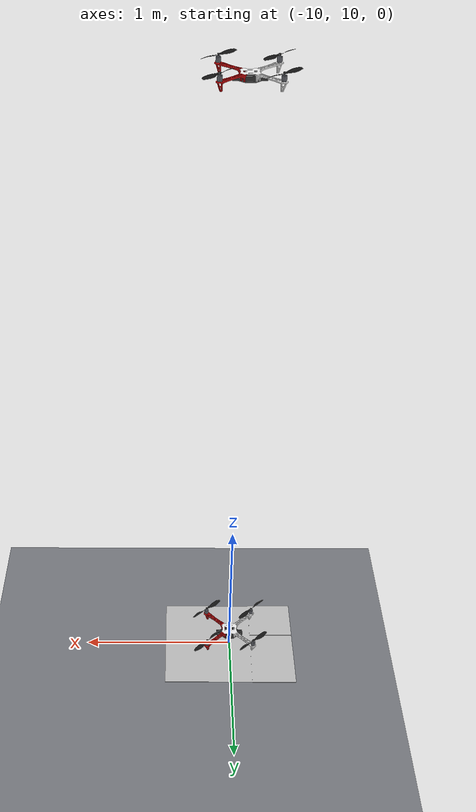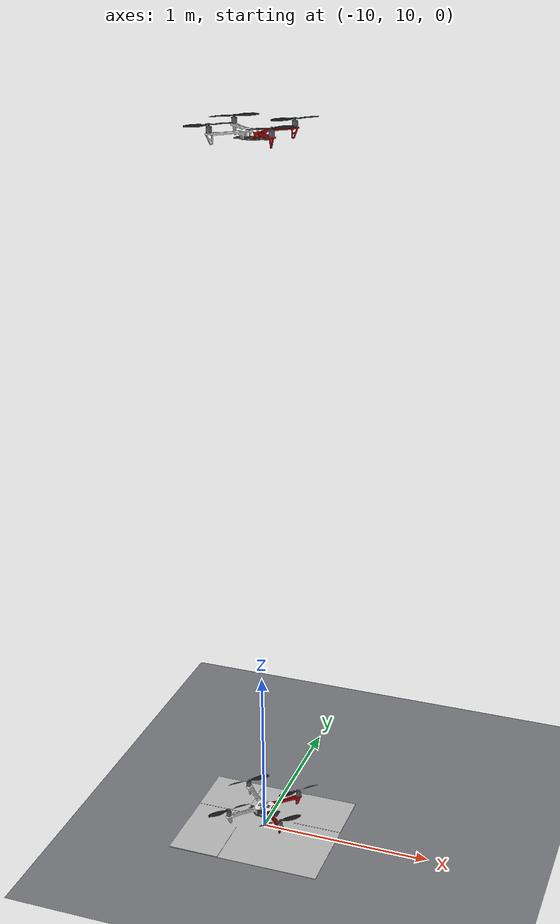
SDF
<?xml version="1.0" ?>
<sdf version="1.9">
  <world name="ibvs">

    <!-- Every node is paced by this clock (sim_rate.hpp). Slow the sim HERE via
         real_time_factor, not by lowering the camera's update_rate. -->
    <physics name="default_physics" type="ignored">
      <max_step_size>0.001</max_step_size>
      <real_time_factor>1.0</real_time_factor>
      <real_time_update_rate>1000</real_time_update_rate>
    </physics>
    <gravity>0 0 -9.81</gravity>

    <!-- The barometer's pressure-vs-altitude model. Without it EKF2's height estimate walks
         away under plant:=px4; inert for the other plants. -->
    <atmosphere type="adiabatic"/>

    <magnetic_field>0 2.3769e-05 -4.2e-05</magnetic_field>
    <spherical_coordinates>
      <surface_model>EARTH_WGS84</surface_model>
      <world_frame_orientation>ENU</world_frame_orientation>
      <latitude_deg>47.397971057728974</latitude_deg>
      <longitude_deg>8.546163739800146</longitude_deg>
      <elevation>0</elevation>
    </spherical_coordinates>

    <!-- Sensors renders the camera; UserCommands is what makes set_pose_vector work.
         Both are mandatory for this simulation. -->
    <plugin filename="gz-sim-physics-system"           name="gz::sim::systems::Physics"/>
    <plugin filename="gz-sim-user-commands-system"     name="gz::sim::systems::UserCommands"/>
    <plugin filename="gz-sim-scene-broadcaster-system" name="gz::sim::systems::SceneBroadcaster"/>
    <plugin filename="gz-sim-sensors-system"           name="gz::sim::systems::Sensors">
      <render_engine>ogre2</render_engine>
    </plugin>

    <!-- ONLY:px4 BEGIN -->
    <plugin filename="gz-sim-imu-system"           name="gz::sim::systems::Imu"/>
    <plugin filename="gz-sim-air-pressure-system"  name="gz::sim::systems::AirPressure"/>
    <plugin filename="gz-sim-magnetometer-system"  name="gz::sim::systems::Magnetometer"/>
    <plugin filename="gz-sim-navsat-system"        name="gz::sim::systems::NavSat"/>
    <plugin filename="gz-sim-contact-system"       name="gz::sim::systems::Contact"/>
    <plugin filename="gz-sim-apply-link-wrench-system" name="gz::sim::systems::ApplyLinkWrench"/>
    <!-- ONLY END -->

    <!-- ONLY:gazebo BEGIN -->
    <plugin filename="BodyWrenchSystem" name="quad_gz_sim::BodyWrench">
      <model_name>F450</model_name>
      <link_name>base_link</link_name>
      <topic_prefix>/F450</topic_prefix>
      <initial_thrust>19.62</initial_thrust>
      <state_publish_rate>100</state_publish_rate>
      <!-- Guard against a diverged controller reaching DART, not actuator saturation. -->
      <max_force>500</max_force>
      <max_torque>100</max_torque>
    </plugin>
    <!-- ONLY END -->

    <!-- ONLY:px4 BEGIN -->
    <plugin filename="BodyWrenchSystem" name="quad_gz_sim::BodyWrench">
      <model_name>F450</model_name>
      <link_name>base_link</link_name>
      <topic_prefix>/F450</topic_prefix>
      <initial_thrust>0</initial_thrust>
      <state_publish_rate>100</state_publish_rate>
      <max_force>500</max_force>
      <max_torque>100</max_torque>
    </plugin>
    <!-- ONLY END -->

    <!-- ONLY:px4 BEGIN -->
    <!-- Always on: m*0.1*(v_wind - v_link) plus this noise on every enable_wind link, even at zero
         wind. Kept out of gazebo, whose only disturbance is /disturbances. After BodyWrench. -->
    <wind>
      <linear_velocity>0 0 0</linear_velocity>
    </wind>
    <plugin filename="gz-sim-wind-effects-system" name="gz::sim::systems::WindEffects">
      <force_approximation_scaling_factor>0.1</force_approximation_scaling_factor>
      <horizontal>
        <magnitude>
          <time_for_rise>4</time_for_rise>
          <noise type="gaussian"><mean>0</mean><stddev>0.03</stddev></noise>
        </magnitude>
        <direction>
          <time_for_rise>2</time_for_rise>
          <noise type="gaussian"><mean>0</mean><stddev>0.03</stddev></noise>
        </direction>
      </horizontal>
      <vertical>
        <noise type="gaussian"><mean>0</mean><stddev>0.01</stddev></noise>
      </vertical>
    </plugin>
    <!-- ONLY END -->

    <!-- Echo instance, LAST on purpose: the wrench component is zeroed every step, so the
         total is only observable by a system running after everyone who writes it. -->
    <!-- ONLY:gazebo BEGIN -->
    <plugin filename="BodyWrenchSystem" name="quad_gz_sim::BodyWrench">
      <mode>echo</mode>
      <model_name>F450</model_name>
      <link_name>base_link</link_name>
      <topic_prefix>/F450</topic_prefix>
      <state_publish_rate>100</state_publish_rate>
      <!-- MUST match the plant instance: the echo subtracts commanded thrust. -->
      <initial_thrust>19.62</initial_thrust>
    </plugin>
    <!-- ONLY END -->

    <!-- ONLY:px4 BEGIN -->
    <!-- Subtracts nothing, so it reports the whole base_link wrench. PX4's thrust goes to the
         rotor links and never lands here, so this stays the observer's ground truth. -->
    <plugin filename="BodyWrenchSystem" name="quad_gz_sim::BodyWrench">
      <mode>echo</mode>
      <model_name>F450</model_name>
      <link_name>base_link</link_name>
      <topic_prefix>/F450</topic_prefix>
      <state_publish_rate>100</state_publish_rate>
      <initial_thrust>0</initial_thrust>
    </plugin>
    <!-- ONLY END -->

    <!-- The ground plane is deliberately untextured: anything busy under the markers risks
         the ArUco adaptive threshold. The grid is GUI-only and never reaches the sensor. -->
    <scene>
      <grid>true</grid>
      <ambient>0.8 0.8 0.8 1.0</ambient>
      <sky/>
      <shadows>false</shadows>
    </scene>

    <!-- 2 cm down so z=0 does not z-fight the 1 mm ArUco plate. The collision makes ground
         contact real; the plugin's NaN guard stops a divergence becoming a DART assert. -->
    <model name="ground_plane">
      <static>true</static>
      <pose>0 0 -0.02 0 0 0</pose>
      <link name="link">
        <collision name="collision">
          <geometry><plane><normal>0 0 1</normal><size>400 400</size></plane></geometry>
        </collision>
        <visual name="visual">
          <geometry><plane><normal>0 0 1</normal><size>400 400</size></plane></geometry>
          <material>
            <ambient>0.35 0.36 0.38 1</ambient>
            <diffuse>0.45 0.46 0.48 1</diffuse>
          </material>
          <cast_shadows>0</cast_shadows>
        </visual>
      </link>
    </model>

    <light type="directional" name="sun">
      <cast_shadows>false</cast_shadows>
      <pose>0 0 40 0 0 0</pose>
      <diffuse>0.8 0.8 0.8 1</diffuse>
      <specular>0.2 0.2 0.2 1</specular>
      <direction>-0.5 0.1 -0.9</direction>
    </light>

    <!-- 13-point light grid from the classic world; keeps the markers legible across the
         whole trajectory footprint, which starts at (-10,-10) in ROS coordinates. -->
    <light name="point_light_0" type="point">
      <pose>22 20 12 0 0 0</pose>
      <diffuse>0.5 0.5 0.5 1</diffuse>
      <attenuation><range>20</range><constant>0.2</constant><linear>0</linear><quadratic>0.0</quadratic></attenuation>
    </light>
    <light name="point_light_1" type="point">
      <pose>20 0 12 0 0 0</pose>
      <diffuse>0.5 0.5 0.5 1</diffuse>
      <attenuation><range>20</range><constant>0.2</constant><linear>0</linear><quadratic>0.0</quadratic></attenuation>
    </light>
    <light name="point_light_2" type="point">
      <pose>20 -20 12 0 0 0</pose>
      <diffuse>0.5 0.5 0.5 1</diffuse>
      <attenuation><range>20</range><constant>0.2</constant><linear>0</linear><quadratic>0.0</quadratic></attenuation>
    </light>
    <light name="point_light_3" type="point">
      <pose>0 20 12 0 0 0</pose>
      <diffuse>0.5 0.5 0.5 1</diffuse>
      <attenuation><range>20</range><constant>0.2</constant><linear>0</linear><quadratic>0.0</quadratic></attenuation>
    </light>
    <light name="point_light_4" type="point">
      <pose>0 0 12 0 0 0</pose>
      <diffuse>0.5 0.5 0.5 1</diffuse>
      <attenuation><range>20</range><constant>0.2</constant><linear>0</linear><quadratic>0.0</quadratic></attenuation>
    </light>
    <light name="point_light_5" type="point">
      <pose>0 -20 12 0 0 0</pose>
      <diffuse>0.5 0.5 0.5 1</diffuse>
      <attenuation><range>20</range><constant>0.2</constant><linear>0</linear><quadratic>0.0</quadratic></attenuation>
    </light>
    <light name="point_light_6" type="point">
      <pose>-20 20 12 0 0 0</pose>
      <diffuse>0.5 0.5 0.5 1</diffuse>
      <attenuation><range>20</range><constant>0.2</constant><linear>0</linear><quadratic>0.0</quadratic></attenuation>
    </light>
    <light name="point_light_7" type="point">
      <pose>-20 0 12 0 0 0</pose>
      <diffuse>0.5 0.5 0.5 1</diffuse>
      <attenuation><range>20</range><constant>0.2</constant><linear>0</linear><quadratic>0.0</quadratic></attenuation>
    </light>
    <light name="point_light_8" type="point">
      <pose>-20 -20 12 0 0 0</pose>
      <diffuse>0.5 0.5 0.5 1</diffuse>
      <attenuation><range>20</range><constant>0.2</constant><linear>0</linear><quadratic>0.0</quadratic></attenuation>
    </light>
    <light name="point_light_9" type="point">
      <pose>10 10 12 0 0 0</pose>
      <diffuse>0.5 0.5 0.5 1</diffuse>
      <attenuation><range>20</range><constant>0.2</constant><linear>0</linear><quadratic>0.0</quadratic></attenuation>
    </light>
    <light name="point_light_10" type="point">
      <pose>10 -10 12 0 0 0</pose>
      <diffuse>0.5 0.5 0.5 1</diffuse>
      <attenuation><range>20</range><constant>0.2</constant><linear>0</linear><quadratic>0.0</quadratic></attenuation>
    </light>
    <light name="point_light_11" type="point">
      <pose>-10 10 12 0 0 0</pose>
      <diffuse>0.5 0.5 0.5 1</diffuse>
      <attenuation><range>20</range><constant>0.2</constant><linear>0</linear><quadratic>0.0</quadratic></attenuation>
    </light>
    <light name="point_light_12" type="point">
      <pose>-10 -10 12 0 0 0</pose>
      <diffuse>0.5 0.5 0.5 1</diffuse>
      <attenuation><range>20</range><constant>0.2</constant><linear>0</linear><quadratic>0.0</quadratic></attenuation>
    </light>

    <!-- Initial poses match what gz_pose_broadcaster commands on its first cycle
         (ROS y and z are negated), so there is no first-frame flash at the origin. -->
    <include>
      <uri>model://aruco_target</uri>
      <name>aruco_Target</name>
      <pose>-10 10 0 0 0 0</pose>
    </include>

    <!-- ONLY:analytic,gazebo BEGIN -->
    <include>
      <uri>model://F450</uri>
      <name>F450</name>
      <pose>-10 10 4 0 0 0</pose>
    </include>
    <!-- ONLY END -->

    <!-- ONLY:px4 BEGIN -->
    <include>
      <uri>model://F450_px4</uri>
      <name>F450</name>
      <pose>-10 10 0.1 0 0 0</pose>
    </include>
    <!-- ONLY END -->

    <gui fullscreen="0">

      <plugin filename="MinimalScene" name="3D View">
        <gz-gui>
          <title>3D View</title>
          <property type="bool" key="showTitleBar">false</property>
          <property type="string" key="state">docked</property>
        </gz-gui>
        <engine>ogre2</engine>
        <scene>scene</scene>
        <ambient_light>0.8 0.8 0.8</ambient_light>
        <background_color>0.55 0.65 0.78</background_color>
        <!-- Oblique, not top-down, so the horizon stays in shot and motion is readable. -->
        <camera_pose>-22 10 6 0 0.40 0</camera_pose>
      </plugin>

      <plugin filename="EntityContextMenuPlugin" name="Entity context menu">
        <gz-gui>
          <property key="state" type="string">floating</property>
          <property key="width" type="double">5</property>
          <property key="height" type="double">5</property>
          <property key="showTitleBar" type="bool">false</property>
        </gz-gui>
      </plugin>
      <plugin filename="GzSceneManager" name="Scene Manager">
        <gz-gui>
          <property key="resizable" type="bool">false</property>
          <property key="width" type="double">5</property>
          <property key="height" type="double">5</property>
          <property key="state" type="string">floating</property>
          <property key="showTitleBar" type="bool">false</property>
        </gz-gui>
      </plugin>
      <plugin filename="InteractiveViewControl" name="Interactive view control">
        <gz-gui>
          <property key="resizable" type="bool">false</property>
          <property key="width" type="double">5</property>
          <property key="height" type="double">5</property>
          <property key="state" type="string">floating</property>
          <property key="showTitleBar" type="bool">false</property>
        </gz-gui>
      </plugin>
      <plugin filename="CameraTracking" name="Camera Tracking">
        <gz-gui>
          <property key="resizable" type="bool">false</property>
          <property key="width" type="double">5</property>
          <property key="height" type="double">5</property>
          <property key="state" type="string">floating</property>
          <property key="showTitleBar" type="bool">false</property>
        </gz-gui>
      </plugin>
      <plugin filename="MarkerManager" name="Marker manager">
        <gz-gui>
          <property key="resizable" type="bool">false</property>
          <property key="width" type="double">5</property>
          <property key="height" type="double">5</property>
          <property key="state" type="string">floating</property>
          <property key="showTitleBar" type="bool">false</property>
        </gz-gui>
      </plugin>
      <plugin filename="SelectEntities" name="Select Entities">
        <gz-gui>
          <property key="resizable" type="bool">false</property>
          <property key="width" type="double">5</property>
          <property key="height" type="double">5</property>
          <property key="state" type="string">floating</property>
          <property key="showTitleBar" type="bool">false</property>
        </gz-gui>
      </plugin>
      <plugin filename="VisualizationCapabilities" name="Visualization Capabilities">
        <gz-gui>
          <property key="resizable" type="bool">false</property>
          <property key="width" type="double">5</property>
          <property key="height" type="double">5</property>
          <property key="state" type="string">floating</property>
          <property key="showTitleBar" type="bool">false</property>
        </gz-gui>
      </plugin>

      <!-- start_paused false: the GUI's default of true pauses the server on connect. -->
      <plugin filename="WorldControl" name="World control">
        <gz-gui>
          <title>World control</title>
          <property type="bool" key="showTitleBar">false</property>
          <property type="bool" key="resizable">false</property>
          <property type="double" key="height">72</property>
          <property type="double" key="z">1</property>
          <property type="string" key="state">floating</property>
          <anchors target="3D View">
            <line own="left" target="left"/>
            <line own="bottom" target="bottom"/>
          </anchors>
        </gz-gui>
        <play_pause>true</play_pause>
        <step>true</step>
        <start_paused>false</start_paused>
        <use_event>true</use_event>
      </plugin>

      <plugin filename="WorldStats" name="World stats">
        <gz-gui>
          <title>World stats</title>
          <property type="bool" key="showTitleBar">false</property>
          <property type="bool" key="resizable">false</property>
          <property type="double" key="height">110</property>
          <property type="double" key="width">290</property>
          <property type="double" key="z">1</property>
          <property type="string" key="state">floating</property>
          <anchors target="3D View">
            <line own="right" target="right"/>
            <line own="bottom" target="bottom"/>
          </anchors>
        </gz-gui>
        <sim_time>true</sim_time>
        <real_time>true</real_time>
        <real_time_factor>true</real_time_factor>
        <iterations>true</iterations>
      </plugin>

      <!-- Raw gz-transport image, upstream of ros_gz_bridge. -->
      <plugin filename="ImageDisplay" name="Onboard camera">
        <gz-gui>
          <title>Onboard camera</title>
          <property type="string" key="state">docked</property>
          <property type="double" key="width">420</property>
          <property type="double" key="height">320</property>
        </gz-gui>
        <topic>/quad/camera/image_raw</topic>
        <topic_picker>false</topic_picker>
      </plugin>

    </gui>

  </world>
</sdf>

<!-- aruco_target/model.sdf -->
<sdf version='1.9'>
  <model name='aruco_Target'>
    <link name='link_aruco'>
      <pose>0 0 0 0 0 0</pose>
      <inertial>
        <pose>0 0 0 0 0 -1.57079633</pose>
        <mass>0.2</mass>
        <inertia>
          <ixx>0.0411</ixx>
          <ixy>0</ixy>
          <ixz>0</ixz>
          <iyy>0.0478</iyy>
          <iyz>0</iyz>
          <izz>0.0599</izz>
        </inertia>
      </inertial>
      <self_collide>0</self_collide>

      <collision name='Collision'>
        <pose>0 0 0 0 0 -1.57079633</pose>
        <geometry>
          <box>
            <size>0.90 0.75 0.001</size>
          </box>
        </geometry>
      </collision>

      <visual name='visual'>
        <pose>0 0 0 0 0 -1.57079633</pose>
        <geometry>
          <mesh>
            <uri>model://aruco_target/meshes/Target2.dae</uri>
            <scale>1 1 1</scale>
          </mesh>
        </geometry>
        <cast_shadows>0</cast_shadows>
        <transparency>0</transparency>
      </visual>
    </link>
    <static>0</static>
    <allow_auto_disable>0</allow_auto_disable>
  </model>
</sdf>

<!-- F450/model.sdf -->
<sdf version='1.9'>
  <model name='F450'>

    <!-- ================= airframe: plates + arms + motors ====================== -->
    <link name='base_link'>
      <self_collide>0</self_collide>

      <inertial>
        <pose>0 0 -0.0063582 0 0 0</pose>
        <mass>1.852144</mass>
        <inertia>
          <ixx>0.0359836</ixx>
          <ixy>0</ixy>
          <ixz>0</ixz>
          <iyy>0.0426836</iyy>
          <iyz>0</iyz>
          <izz>0.0516929</izz>
        </inertia>
      </inertial>

      <!-- Coarse stand-in; only matters once the quad reaches the ground. -->
      <collision name='base_collision'>
        <geometry>
          <cylinder><radius>0.25</radius><length>0.06</length></cylinder>
        </geometry>
      </collision>

      <!-- Consumed by gz-sim-wind-effects-system; ignored when that plugin is not loaded. -->
      <enable_wind>true</enable_wind>

      <visual name='base_plate'>
        <geometry>
          <mesh>
            <uri>model://F450/meshes/base_plate.stl</uri>
            <scale>0.001 0.001 0.001</scale>
          </mesh>
        </geometry>
        <material>
          <ambient>0.05 0.05 0.05 1</ambient>
          <diffuse>0.12 0.12 0.12 1</diffuse>
          <specular>0.1 0.1 0.1 1</specular>
        </material>
      </visual>

      <visual name='top_plate'>
        <geometry>
          <mesh>
            <uri>model://F450/meshes/top_plate.stl</uri>
            <scale>0.001 0.001 0.001</scale>
          </mesh>
        </geometry>
        <material>
          <ambient>0.6 0.6 0.6 1</ambient>
          <diffuse>0.9 0.9 0.9 1</diffuse>
          <specular>0.2 0.2 0.2 1</specular>
        </material>
      </visual>

      <!-- Front arms red, rear white (stock livery): the only heading cue in the 3D view.
           Mesh is the front right arm; +90 deg of yaw walks it round the other three. -->
      <visual name='arm_front_right'>
        <pose>0 0 0 0 0 0</pose>
        <geometry>
          <mesh>
            <uri>model://F450/meshes/arm.stl</uri>
            <scale>0.001 0.001 0.001</scale>
          </mesh>
        </geometry>
        <material>
          <ambient>0.35 0.02 0.02 1</ambient>
          <diffuse>0.75 0.04 0.04 1</diffuse>
          <specular>0.2 0.1 0.1 1</specular>
        </material>
      </visual>

      <visual name='arm_front_left'>
        <pose>0 0 0 0 0 1.5707963</pose>
        <geometry>
          <mesh>
            <uri>model://F450/meshes/arm.stl</uri>
            <scale>0.001 0.001 0.001</scale>
          </mesh>
        </geometry>
        <material>
          <ambient>0.35 0.02 0.02 1</ambient>
          <diffuse>0.75 0.04 0.04 1</diffuse>
          <specular>0.2 0.1 0.1 1</specular>
        </material>
      </visual>

      <visual name='arm_rear_left'>
        <pose>0 0 0 0 0 3.1415927</pose>
        <geometry>
          <mesh>
            <uri>model://F450/meshes/arm.stl</uri>
            <scale>0.001 0.001 0.001</scale>
          </mesh>
        </geometry>
        <material>
          <ambient>0.55 0.55 0.55 1</ambient>
          <diffuse>0.88 0.88 0.88 1</diffuse>
          <specular>0.2 0.2 0.2 1</specular>
        </material>
      </visual>

      <visual name='arm_rear_right'>
        <pose>0 0 0 0 0 -1.5707963</pose>
        <geometry>
          <mesh>
            <uri>model://F450/meshes/arm.stl</uri>
            <scale>0.001 0.001 0.001</scale>
          </mesh>
        </geometry>
        <material>
          <ambient>0.55 0.55 0.55 1</ambient>
          <diffuse>0.88 0.88 0.88 1</diffuse>
          <specular>0.2 0.2 0.2 1</specular>
        </material>
      </visual>

      <!-- Motor mesh is authored at the front left boom. -->
      <visual name='motor_front_left'>
        <pose>0 0 0 0 0 0</pose>
        <geometry>
          <mesh>
            <uri>model://F450/meshes/motor.stl</uri>
            <scale>0.001 0.001 0.001</scale>
          </mesh>
        </geometry>
        <material>
          <ambient>0.2 0.2 0.22 1</ambient>
          <diffuse>0.42 0.43 0.46 1</diffuse>
          <specular>0.5 0.5 0.5 1</specular>
        </material>
      </visual>

      <visual name='motor_rear_left'>
        <pose>0 0 0 0 0 1.5707963</pose>
        <geometry>
          <mesh>
            <uri>model://F450/meshes/motor.stl</uri>
            <scale>0.001 0.001 0.001</scale>
          </mesh>
        </geometry>
        <material>
          <ambient>0.2 0.2 0.22 1</ambient>
          <diffuse>0.42 0.43 0.46 1</diffuse>
          <specular>0.5 0.5 0.5 1</specular>
        </material>
      </visual>

      <visual name='motor_rear_right'>
        <pose>0 0 0 0 0 3.1415927</pose>
        <geometry>
          <mesh>
            <uri>model://F450/meshes/motor.stl</uri>
            <scale>0.001 0.001 0.001</scale>
          </mesh>
        </geometry>
        <material>
          <ambient>0.2 0.2 0.22 1</ambient>
          <diffuse>0.42 0.43 0.46 1</diffuse>
          <specular>0.5 0.5 0.5 1</specular>
        </material>
      </visual>

      <visual name='motor_front_right'>
        <pose>0 0 0 0 0 -1.5707963</pose>
        <geometry>
          <mesh>
            <uri>model://F450/meshes/motor.stl</uri>
            <scale>0.001 0.001 0.001</scale>
          </mesh>
        </geometry>
        <material>
          <ambient>0.2 0.2 0.22 1</ambient>
          <diffuse>0.42 0.43 0.46 1</diffuse>
          <specular>0.5 0.5 0.5 1</specular>
        </material>
      </visual>

      <!-- Camera at the model origin, looking along body -z. The plant treats quad
           position as camera position, so this must stay at 0 0 0. Nothing occludes it. -->
      <sensor name='camera1' type='camera'>
        <pose>0 0 0 0 1.570796 0</pose>
        <topic>quad/camera/image_raw</topic>
        <camera name="head">
          <horizontal_fov>1.085595</horizontal_fov>
          <image>
            <!-- Twice the ROS 1 resolution; required to decode the markers from the
                 paper's -4 m start. pixel_size in image_features.cpp is halved to match. -->
            <width>820</width>
            <height>616</height>
            <format>R8G8B8</format>
          </image>
          <clip>
            <near>0.02</near>
            <far>300</far>
          </clip>
        </camera>
        <always_on>1</always_on>
        <!-- Sim-time rate, matching image_features' own 50 Hz loop. Do not lower it; to
             slow the simulation change real_time_factor in worlds/ibvs.sdf instead. -->
        <update_rate>50</update_rate>
        <visualize>1</visualize>
      </sensor>
    </link>

    <!-- ================= rotors ================================================ -->
    <!-- One link per propeller. Visual offset is minus the hub position (the STL is in
         assembly coordinates); yaw is the k*90 deg off the front left blade. -->

    <link name='rotor_front_left'>
      <pose>0.158911 0.158901 0.079647 0 0 0</pose>
      <inertial>
        <mass>0.036964</mass>
        <inertia>
          <ixx>0.0000925</ixx><ixy>0</ixy><ixz>0</ixz>
          <iyy>0.0000925</iyy><iyz>0</iyz>
          <izz>0.000185</izz>
        </inertia>
      </inertial>
      <visual name='visual'>
        <pose>-0.158911 -0.158901 -0.079647 0 0 0</pose>
        <geometry>
          <mesh>
            <uri>model://F450/meshes/propeller_cw.stl</uri>
            <scale>0.001 0.001 0.001</scale>
          </mesh>
        </geometry>
        <material>
          <ambient>0.02 0.02 0.02 1</ambient>
          <diffuse>0.08 0.08 0.08 1</diffuse>
          <specular>0.3 0.3 0.3 1</specular>
        </material>
      </visual>
    </link>

    <link name='rotor_rear_left'>
      <pose>-0.158901 0.158911 0.079647 0 0 0</pose>
      <inertial>
        <mass>0.036964</mass>
        <inertia>
          <ixx>0.0000925</ixx><ixy>0</ixy><ixz>0</ixz>
          <iyy>0.0000925</iyy><iyz>0</iyz>
          <izz>0.000185</izz>
        </inertia>
      </inertial>
      <visual name='visual'>
        <pose>0.158901 -0.158911 -0.079647 0 0 1.5707963</pose>
        <geometry>
          <mesh>
            <uri>model://F450/meshes/propeller_ccw.stl</uri>
            <scale>0.001 0.001 0.001</scale>
          </mesh>
        </geometry>
        <material>
          <ambient>0.02 0.02 0.02 1</ambient>
          <diffuse>0.08 0.08 0.08 1</diffuse>
          <specular>0.3 0.3 0.3 1</specular>
        </material>
      </visual>
    </link>

    <link name='rotor_rear_right'>
      <pose>-0.158911 -0.158901 0.079647 0 0 0</pose>
      <inertial>
        <mass>0.036964</mass>
        <inertia>
          <ixx>0.0000925</ixx><ixy>0</ixy><ixz>0</ixz>
          <iyy>0.0000925</iyy><iyz>0</iyz>
          <izz>0.000185</izz>
        </inertia>
      </inertial>
      <visual name='visual'>
        <pose>0.158911 0.158901 -0.079647 0 0 3.1415927</pose>
        <geometry>
          <mesh>
            <uri>model://F450/meshes/propeller_cw.stl</uri>
            <scale>0.001 0.001 0.001</scale>
          </mesh>
        </geometry>
        <material>
          <ambient>0.02 0.02 0.02 1</ambient>
          <diffuse>0.08 0.08 0.08 1</diffuse>
          <specular>0.3 0.3 0.3 1</specular>
        </material>
      </visual>
    </link>

    <link name='rotor_front_right'>
      <pose>0.158901 -0.158911 0.079647 0 0 0</pose>
      <inertial>
        <mass>0.036964</mass>
        <inertia>
          <ixx>0.0000925</ixx><ixy>0</ixy><ixz>0</ixz>
          <iyy>0.0000925</iyy><iyz>0</iyz>
          <izz>0.000185</izz>
        </inertia>
      </inertial>
      <visual name='visual'>
        <pose>-0.158901 0.158911 -0.079647 0 0 -1.5707963</pose>
        <geometry>
          <mesh>
            <uri>model://F450/meshes/propeller_ccw.stl</uri>
            <scale>0.001 0.001 0.001</scale>
          </mesh>
        </geometry>
        <material>
          <ambient>0.02 0.02 0.02 1</ambient>
          <diffuse>0.08 0.08 0.08 1</diffuse>
          <specular>0.3 0.3 0.3 1</specular>
        </material>
      </visual>
    </link>

    <!-- The URDF's "continuous" joints; SDF has no such type, so revolute with limits
         wide enough never to be reached. Axis +z up, positive command = CCW from above. -->
    <joint name='rotor_front_left_joint' type='revolute'>
      <parent>base_link</parent>
      <child>rotor_front_left</child>
      <axis>
        <xyz>0 0 1</xyz>
        <limit><lower>-1e16</lower><upper>1e16</upper></limit>
        <dynamics><damping>0</damping><friction>0</friction></dynamics>
      </axis>
    </joint>

    <joint name='rotor_rear_left_joint' type='revolute'>
      <parent>base_link</parent>
      <child>rotor_rear_left</child>
      <axis>
        <xyz>0 0 1</xyz>
        <limit><lower>-1e16</lower><upper>1e16</upper></limit>
        <dynamics><damping>0</damping><friction>0</friction></dynamics>
      </axis>
    </joint>

    <joint name='rotor_rear_right_joint' type='revolute'>
      <parent>base_link</parent>
      <child>rotor_rear_right</child>
      <axis>
        <xyz>0 0 1</xyz>
        <limit><lower>-1e16</lower><upper>1e16</upper></limit>
        <dynamics><damping>0</damping><friction>0</friction></dynamics>
      </axis>
    </joint>

    <joint name='rotor_front_right_joint' type='revolute'>
      <parent>base_link</parent>
      <child>rotor_front_right</child>
      <axis>
        <xyz>0 0 1</xyz>
        <limit><lower>-1e16</lower><upper>1e16</upper></limit>
        <dynamics><damping>0</damping><friction>0</friction></dynamics>
      </axis>
    </joint>

    <plugin filename="gz-sim-joint-controller-system" name="gz::sim::systems::JointController">
      <joint_name>rotor_front_left_joint</joint_name>
      <initial_velocity>-60.0</initial_velocity>
      <topic>/model/F450/joint/rotor_front_left_joint/cmd_vel</topic>
    </plugin>
    <plugin filename="gz-sim-joint-controller-system" name="gz::sim::systems::JointController">
      <joint_name>rotor_rear_right_joint</joint_name>
      <initial_velocity>-60.0</initial_velocity>
      <topic>/model/F450/joint/rotor_rear_right_joint/cmd_vel</topic>
    </plugin>
    <plugin filename="gz-sim-joint-controller-system" name="gz::sim::systems::JointController">
      <joint_name>rotor_front_right_joint</joint_name>
      <initial_velocity>60.0</initial_velocity>
      <topic>/model/F450/joint/rotor_front_right_joint/cmd_vel</topic>
    </plugin>
    <plugin filename="gz-sim-joint-controller-system" name="gz::sim::systems::JointController">
      <joint_name>rotor_rear_left_joint</joint_name>
      <initial_velocity>60.0</initial_velocity>
      <topic>/model/F450/joint/rotor_rear_left_joint/cmd_vel</topic>
    </plugin>

    <static>0</static>
    <allow_auto_disable>0</allow_auto_disable>
  </model>
</sdf>

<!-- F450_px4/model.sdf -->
<sdf version='1.9'>
  <model name='F450_px4'>

    <include merge='true'>
      <uri>model://F450_base</uri>
    </include>

    <plugin filename="gz-sim-multicopter-motor-model-system"
      name="gz::sim::systems::MulticopterMotorModel">
      <jointName>rotor_front_right_joint</jointName>
      <linkName>rotor_front_right</linkName>
      <turningDirection>ccw</turningDirection>
      <timeConstantUp>0.0125</timeConstantUp>
      <timeConstantDown>0.025</timeConstantDown>
      <maxRotVelocity>1200.0</maxRotVelocity>
      <motorConstant>8.566e-06</motorConstant>
      <momentConstant>0.016</momentConstant>
      <commandSubTopic>command/motor_speed</commandSubTopic>
      <motorNumber>0</motorNumber>
      <rotorDragCoefficient>8.06428e-05</rotorDragCoefficient>
      <rollingMomentCoefficient>1e-06</rollingMomentCoefficient>
      <rotorVelocitySlowdownSim>10</rotorVelocitySlowdownSim>
      <motorType>velocity</motorType>
    </plugin>

    <plugin filename="gz-sim-multicopter-motor-model-system"
      name="gz::sim::systems::MulticopterMotorModel">
      <jointName>rotor_rear_left_joint</jointName>
      <linkName>rotor_rear_left</linkName>
      <turningDirection>ccw</turningDirection>
      <timeConstantUp>0.0125</timeConstantUp>
      <timeConstantDown>0.025</timeConstantDown>
      <maxRotVelocity>1200.0</maxRotVelocity>
      <motorConstant>8.566e-06</motorConstant>
      <momentConstant>0.016</momentConstant>
      <commandSubTopic>command/motor_speed</commandSubTopic>
      <motorNumber>1</motorNumber>
      <rotorDragCoefficient>8.06428e-05</rotorDragCoefficient>
      <rollingMomentCoefficient>1e-06</rollingMomentCoefficient>
      <rotorVelocitySlowdownSim>10</rotorVelocitySlowdownSim>
      <motorType>velocity</motorType>
    </plugin>

    <plugin filename="gz-sim-multicopter-motor-model-system"
      name="gz::sim::systems::MulticopterMotorModel">
      <jointName>rotor_front_left_joint</jointName>
      <linkName>rotor_front_left</linkName>
      <turningDirection>cw</turningDirection>
      <timeConstantUp>0.0125</timeConstantUp>
      <timeConstantDown>0.025</timeConstantDown>
      <maxRotVelocity>1200.0</maxRotVelocity>
      <motorConstant>8.566e-06</motorConstant>
      <momentConstant>0.016</momentConstant>
      <commandSubTopic>command/motor_speed</commandSubTopic>
      <motorNumber>2</motorNumber>
      <rotorDragCoefficient>8.06428e-05</rotorDragCoefficient>
      <rollingMomentCoefficient>1e-06</rollingMomentCoefficient>
      <rotorVelocitySlowdownSim>10</rotorVelocitySlowdownSim>
      <motorType>velocity</motorType>
    </plugin>

    <plugin filename="gz-sim-multicopter-motor-model-system"
      name="gz::sim::systems::MulticopterMotorModel">
      <jointName>rotor_rear_right_joint</jointName>
      <linkName>rotor_rear_right</linkName>
      <turningDirection>cw</turningDirection>
      <timeConstantUp>0.0125</timeConstantUp>
      <timeConstantDown>0.025</timeConstantDown>
      <maxRotVelocity>1200.0</maxRotVelocity>
      <motorConstant>8.566e-06</motorConstant>
      <momentConstant>0.016</momentConstant>
      <commandSubTopic>command/motor_speed</commandSubTopic>
      <motorNumber>3</motorNumber>
      <rotorDragCoefficient>8.06428e-05</rotorDragCoefficient>
      <rollingMomentCoefficient>1e-06</rollingMomentCoefficient>
      <rotorVelocitySlowdownSim>10</rotorVelocitySlowdownSim>
      <motorType>velocity</motorType>
    </plugin>

  </model>
</sdf>

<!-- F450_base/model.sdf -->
<sdf version='1.9'>
  <model name='F450_base'>

    <!-- ================= airframe: plates + arms + motors ====================== -->
    <link name='base_link'>
      <self_collide>0</self_collide>

      <inertial>
        <pose>0 0 -0.0063582 0 0 0</pose>
        <mass>1.852144</mass>
        <inertia>
          <ixx>0.0359836</ixx>
          <ixy>0</ixy>
          <ixz>0</ixz>
          <iyy>0.0426836</iyy>
          <iyz>0</iyz>
          <izz>0.0516929</izz>
        </inertia>
      </inertial>

      <!-- Coarse stand-in; only matters once the quad reaches the ground. -->
      <collision name='base_collision'>
        <geometry>
          <cylinder><radius>0.25</radius><length>0.06</length></cylinder>
        </geometry>
      </collision>

      <!-- Consumed by gz-sim-wind-effects-system; ignored when that plugin is not loaded. -->
      <enable_wind>true</enable_wind>

      <visual name='base_plate'>
        <geometry>
          <mesh>
            <uri>model://F450_base/meshes/base_plate.stl</uri>
            <scale>0.001 0.001 0.001</scale>
          </mesh>
        </geometry>
        <material>
          <ambient>0.05 0.05 0.05 1</ambient>
          <diffuse>0.12 0.12 0.12 1</diffuse>
          <specular>0.1 0.1 0.1 1</specular>
        </material>
      </visual>

      <visual name='top_plate'>
        <geometry>
          <mesh>
            <uri>model://F450_base/meshes/top_plate.stl</uri>
            <scale>0.001 0.001 0.001</scale>
          </mesh>
        </geometry>
        <material>
          <ambient>0.6 0.6 0.6 1</ambient>
          <diffuse>0.9 0.9 0.9 1</diffuse>
          <specular>0.2 0.2 0.2 1</specular>
        </material>
      </visual>

      <!-- Front arms red, rear white (stock livery): the only heading cue in the 3D view.
           Mesh is the front right arm; +90 deg of yaw walks it round the other three. -->
      <visual name='arm_front_right'>
        <pose>0 0 0 0 0 0</pose>
        <geometry>
          <mesh>
            <uri>model://F450_base/meshes/arm.stl</uri>
            <scale>0.001 0.001 0.001</scale>
          </mesh>
        </geometry>
        <material>
          <ambient>0.35 0.02 0.02 1</ambient>
          <diffuse>0.75 0.04 0.04 1</diffuse>
          <specular>0.2 0.1 0.1 1</specular>
        </material>
      </visual>

      <visual name='arm_front_left'>
        <pose>0 0 0 0 0 1.5707963</pose>
        <geometry>
          <mesh>
            <uri>model://F450_base/meshes/arm.stl</uri>
            <scale>0.001 0.001 0.001</scale>
          </mesh>
        </geometry>
        <material>
          <ambient>0.35 0.02 0.02 1</ambient>
          <diffuse>0.75 0.04 0.04 1</diffuse>
          <specular>0.2 0.1 0.1 1</specular>
        </material>
      </visual>

      <visual name='arm_rear_left'>
        <pose>0 0 0 0 0 3.1415927</pose>
        <geometry>
          <mesh>
            <uri>model://F450_base/meshes/arm.stl</uri>
            <scale>0.001 0.001 0.001</scale>
          </mesh>
        </geometry>
        <material>
          <ambient>0.55 0.55 0.55 1</ambient>
          <diffuse>0.88 0.88 0.88 1</diffuse>
          <specular>0.2 0.2 0.2 1</specular>
        </material>
      </visual>

      <visual name='arm_rear_right'>
        <pose>0 0 0 0 0 -1.5707963</pose>
        <geometry>
          <mesh>
            <uri>model://F450_base/meshes/arm.stl</uri>
            <scale>0.001 0.001 0.001</scale>
          </mesh>
        </geometry>
        <material>
          <ambient>0.55 0.55 0.55 1</ambient>
          <diffuse>0.88 0.88 0.88 1</diffuse>
          <specular>0.2 0.2 0.2 1</specular>
        </material>
      </visual>

      <!-- Motor mesh is authored at the front left boom. -->
      <visual name='motor_front_left'>
        <pose>0 0 0 0 0 0</pose>
        <geometry>
          <mesh>
            <uri>model://F450_base/meshes/motor.stl</uri>
            <scale>0.001 0.001 0.001</scale>
          </mesh>
        </geometry>
        <material>
          <ambient>0.2 0.2 0.22 1</ambient>
          <diffuse>0.42 0.43 0.46 1</diffuse>
          <specular>0.5 0.5 0.5 1</specular>
        </material>
      </visual>

      <visual name='motor_rear_left'>
        <pose>0 0 0 0 0 1.5707963</pose>
        <geometry>
          <mesh>
            <uri>model://F450_base/meshes/motor.stl</uri>
            <scale>0.001 0.001 0.001</scale>
          </mesh>
        </geometry>
        <material>
          <ambient>0.2 0.2 0.22 1</ambient>
          <diffuse>0.42 0.43 0.46 1</diffuse>
          <specular>0.5 0.5 0.5 1</specular>
        </material>
      </visual>

      <visual name='motor_rear_right'>
        <pose>0 0 0 0 0 3.1415927</pose>
        <geometry>
          <mesh>
            <uri>model://F450_base/meshes/motor.stl</uri>
            <scale>0.001 0.001 0.001</scale>
          </mesh>
        </geometry>
        <material>
          <ambient>0.2 0.2 0.22 1</ambient>
          <diffuse>0.42 0.43 0.46 1</diffuse>
          <specular>0.5 0.5 0.5 1</specular>
        </material>
      </visual>

      <visual name='motor_front_right'>
        <pose>0 0 0 0 0 -1.5707963</pose>
        <geometry>
          <mesh>
            <uri>model://F450_base/meshes/motor.stl</uri>
            <scale>0.001 0.001 0.001</scale>
          </mesh>
        </geometry>
        <material>
          <ambient>0.2 0.2 0.22 1</ambient>
          <diffuse>0.42 0.43 0.46 1</diffuse>
          <specular>0.5 0.5 0.5 1</specular>
        </material>
      </visual>

      <!-- Camera at the model origin, looking along body -z. The plant treats quad
           position as camera position, so this must stay at 0 0 0. Nothing occludes it. -->
      <sensor name='camera1' type='camera'>
        <pose>0 0 0 0 1.570796 0</pose>
        <topic>quad/camera/image_raw</topic>
        <camera name="head">
          <horizontal_fov>1.085595</horizontal_fov>
          <image>
            <width>820</width>
            <height>616</height>
            <format>R8G8B8</format>
          </image>
          <clip>
            <near>0.02</near>
            <far>300</far>
          </clip>
        </camera>
        <always_on>1</always_on>
        <update_rate>50</update_rate>
        <visualize>1</visualize>
      </sensor>

      <!-- ============== PX4 flight sensors ==================================== -->
      <sensor name="air_pressure_sensor" type="air_pressure">
        <always_on>1</always_on>
        <update_rate>50</update_rate>
        <air_pressure>
          <pressure>
            <noise type="gaussian">
              <mean>0</mean>
              <stddev>0.01</stddev>
            </noise>
          </pressure>
        </air_pressure>
      </sensor>

      <sensor name="magnetometer_sensor" type="magnetometer">
        <always_on>1</always_on>
        <update_rate>100</update_rate>
        <magnetometer>
          <x><noise type="gaussian"><stddev>0.0001</stddev></noise></x>
          <y><noise type="gaussian"><stddev>0.0001</stddev></noise></y>
          <z><noise type="gaussian"><stddev>0.0001</stddev></noise></z>
        </magnetometer>
      </sensor>

      <sensor name="imu_sensor" type="imu">
        <always_on>1</always_on>
        <update_rate>250</update_rate>
        <imu>
          <angular_velocity>
            <x><noise type="gaussian"><mean>0</mean><stddev>0.00087</stddev><bias_mean>0</bias_mean><bias_stddev>0</bias_stddev><dynamic_bias_stddev>0.000071</dynamic_bias_stddev><dynamic_bias_correlation_time>300.0</dynamic_bias_correlation_time></noise></x>
            <y><noise type="gaussian"><mean>0</mean><stddev>0.00087</stddev><bias_mean>0</bias_mean><bias_stddev>0</bias_stddev><dynamic_bias_stddev>0.000071</dynamic_bias_stddev><dynamic_bias_correlation_time>300.0</dynamic_bias_correlation_time></noise></y>
            <z><noise type="gaussian"><mean>0</mean><stddev>0.00087</stddev><bias_mean>0</bias_mean><bias_stddev>0</bias_stddev><dynamic_bias_stddev>0.000071</dynamic_bias_stddev><dynamic_bias_correlation_time>300.0</dynamic_bias_correlation_time></noise></z>
          </angular_velocity>
          <linear_acceleration>
            <x><noise type="gaussian"><mean>0</mean><stddev>0.00637</stddev><bias_mean>0</bias_mean><bias_stddev>0</bias_stddev><dynamic_bias_stddev>0.00082</dynamic_bias_stddev><dynamic_bias_correlation_time>300.0</dynamic_bias_correlation_time></noise></x>
            <y><noise type="gaussian"><mean>0</mean><stddev>0.00637</stddev><bias_mean>0</bias_mean><bias_stddev>0</bias_stddev><dynamic_bias_stddev>0.00082</dynamic_bias_stddev><dynamic_bias_correlation_time>300.0</dynamic_bias_correlation_time></noise></y>
            <z><noise type="gaussian"><mean>0</mean><stddev>0.00637</stddev><bias_mean>0</bias_mean><bias_stddev>0</bias_stddev><dynamic_bias_stddev>0.00082</dynamic_bias_stddev><dynamic_bias_correlation_time>300.0</dynamic_bias_correlation_time></noise></z>
          </linear_acceleration>
        </imu>
      </sensor>

      <sensor name="navsat_sensor" type="navsat">
        <always_on>1</always_on>
        <update_rate>30</update_rate>
      </sensor>
    </link>

    <!-- ================= rotors ================================================ -->

    <link name='rotor_front_left'>
      <pose>0.158911 0.158901 0.079647 0 0 0</pose>
      <inertial>
        <mass>0.036964</mass>
        <inertia>
          <ixx>0.0000925</ixx><ixy>0</ixy><ixz>0</ixz>
          <iyy>0.0000925</iyy><iyz>0</iyz>
          <izz>0.000185</izz>
        </inertia>
      </inertial>
      <visual name='visual'>
        <pose>-0.158911 -0.158901 -0.079647 0 0 0</pose>
        <geometry>
          <mesh>
            <uri>model://F450_base/meshes/propeller_cw.stl</uri>
            <scale>0.001 0.001 0.001</scale>
          </mesh>
        </geometry>
        <material>
          <ambient>0.02 0.02 0.02 1</ambient>
          <diffuse>0.08 0.08 0.08 1</diffuse>
          <specular>0.3 0.3 0.3 1</specular>
        </material>
      </visual>
    </link>

    <link name='rotor_rear_left'>
      <pose>-0.158901 0.158911 0.079647 0 0 0</pose>
      <inertial>
        <mass>0.036964</mass>
        <inertia>
          <ixx>0.0000925</ixx><ixy>0</ixy><ixz>0</ixz>
          <iyy>0.0000925</iyy><iyz>0</iyz>
          <izz>0.000185</izz>
        </inertia>
      </inertial>
      <visual name='visual'>
        <pose>0.158901 -0.158911 -0.079647 0 0 1.5707963</pose>
        <geometry>
          <mesh>
            <uri>model://F450_base/meshes/propeller_ccw.stl</uri>
            <scale>0.001 0.001 0.001</scale>
          </mesh>
        </geometry>
        <material>
          <ambient>0.02 0.02 0.02 1</ambient>
          <diffuse>0.08 0.08 0.08 1</diffuse>
          <specular>0.3 0.3 0.3 1</specular>
        </material>
      </visual>
    </link>

    <link name='rotor_rear_right'>
      <pose>-0.158911 -0.158901 0.079647 0 0 0</pose>
      <inertial>
        <mass>0.036964</mass>
        <inertia>
          <ixx>0.0000925</ixx><ixy>0</ixy><ixz>0</ixz>
          <iyy>0.0000925</iyy><iyz>0</iyz>
          <izz>0.000185</izz>
        </inertia>
      </inertial>
      <visual name='visual'>
        <pose>0.158911 0.158901 -0.079647 0 0 3.1415927</pose>
        <geometry>
          <mesh>
            <uri>model://F450_base/meshes/propeller_cw.stl</uri>
            <scale>0.001 0.001 0.001</scale>
          </mesh>
        </geometry>
        <material>
          <ambient>0.02 0.02 0.02 1</ambient>
          <diffuse>0.08 0.08 0.08 1</diffuse>
          <specular>0.3 0.3 0.3 1</specular>
        </material>
      </visual>
    </link>

    <link name='rotor_front_right'>
      <pose>0.158901 -0.158911 0.079647 0 0 0</pose>
      <inertial>
        <mass>0.036964</mass>
        <inertia>
          <ixx>0.0000925</ixx><ixy>0</ixy><ixz>0</ixz>
          <iyy>0.0000925</iyy><iyz>0</iyz>
          <izz>0.000185</izz>
        </inertia>
      </inertial>
      <visual name='visual'>
        <pose>-0.158901 0.158911 -0.079647 0 0 -1.5707963</pose>
        <geometry>
          <mesh>
            <uri>model://F450_base/meshes/propeller_ccw.stl</uri>
            <scale>0.001 0.001 0.001</scale>
          </mesh>
        </geometry>
        <material>
          <ambient>0.02 0.02 0.02 1</ambient>
          <diffuse>0.08 0.08 0.08 1</diffuse>
          <specular>0.3 0.3 0.3 1</specular>
        </material>
      </visual>
    </link>

    <!-- The URDF's "continuous" joints; SDF has no such type, so revolute with limits
         wide enough never to be reached. Axis +z up, positive command = CCW from above. -->
    <joint name='rotor_front_left_joint' type='revolute'>
      <parent>base_link</parent>
      <child>rotor_front_left</child>
      <axis>
        <xyz>0 0 1</xyz>
        <limit><lower>-1e16</lower><upper>1e16</upper></limit>
        <dynamics><damping>0</damping><friction>0</friction></dynamics>
      </axis>
    </joint>

    <joint name='rotor_rear_left_joint' type='revolute'>
      <parent>base_link</parent>
      <child>rotor_rear_left</child>
      <axis>
        <xyz>0 0 1</xyz>
        <limit><lower>-1e16</lower><upper>1e16</upper></limit>
        <dynamics><damping>0</damping><friction>0</friction></dynamics>
      </axis>
    </joint>

    <joint name='rotor_rear_right_joint' type='revolute'>
      <parent>base_link</parent>
      <child>rotor_rear_right</child>
      <axis>
        <xyz>0 0 1</xyz>
        <limit><lower>-1e16</lower><upper>1e16</upper></limit>
        <dynamics><damping>0</damping><friction>0</friction></dynamics>
      </axis>
    </joint>

    <joint name='rotor_front_right_joint' type='revolute'>
      <parent>base_link</parent>
      <child>rotor_front_right</child>
      <axis>
        <xyz>0 0 1</xyz>
        <limit><lower>-1e16</lower><upper>1e16</upper></limit>
        <dynamics><damping>0</damping><friction>0</friction></dynamics>
      </axis>
    </joint>

    <static>0</static>
    <allow_auto_disable>0</allow_auto_disable>
  </model>
</sdf>
